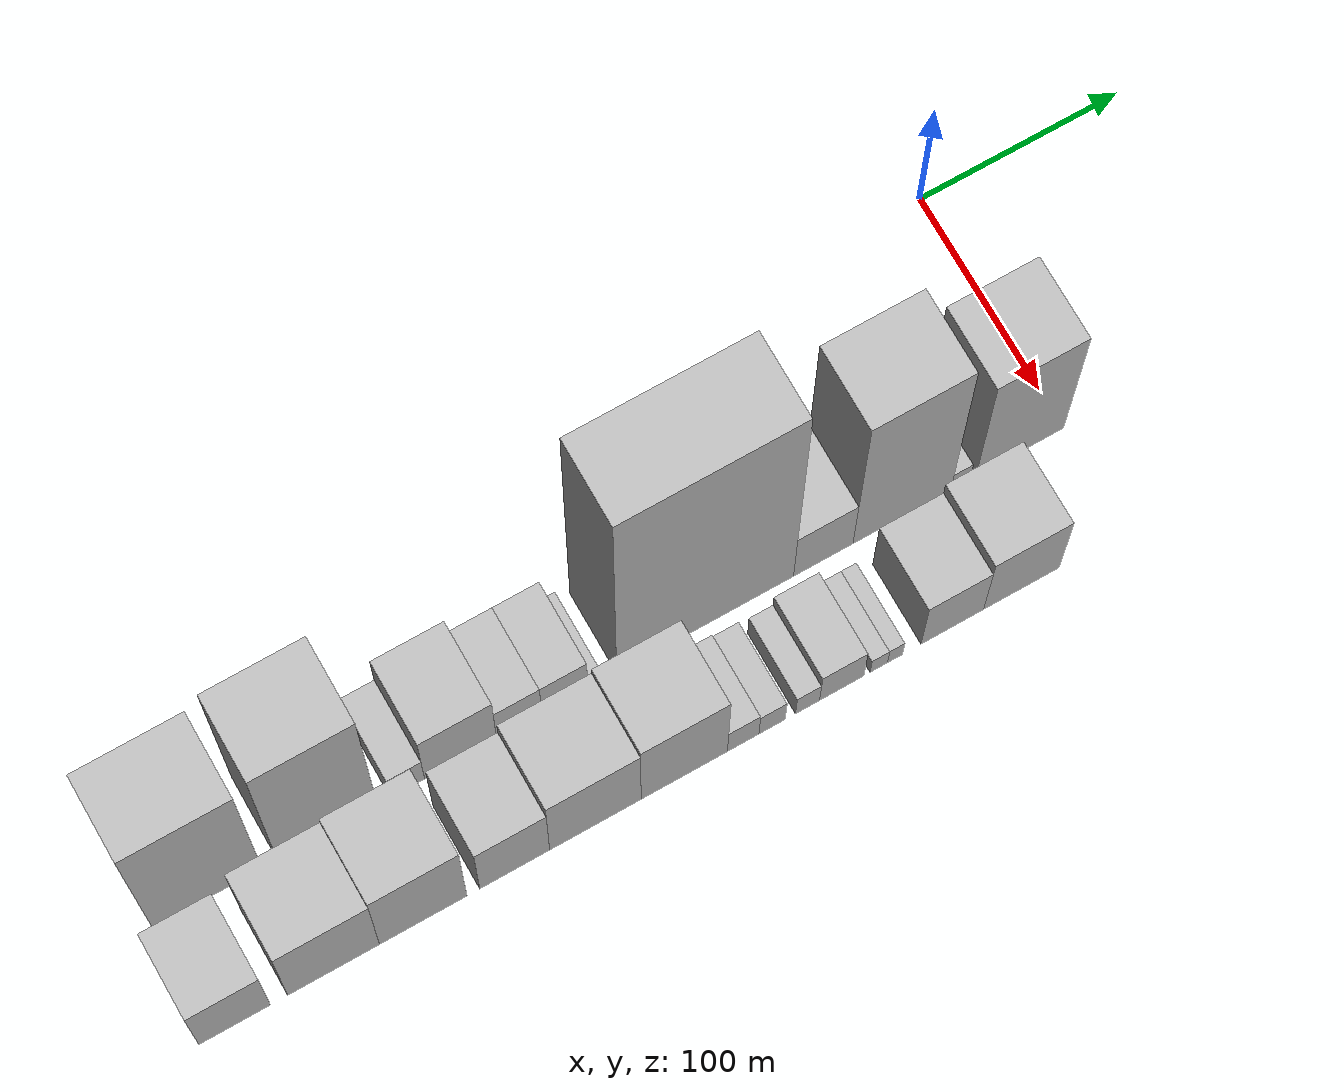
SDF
<sdf version="1.6">
 <world name="default">
  <model name="building_1">
   <static>1</static>
   <pose>100.0000 -412.4454 0 0.000000 0.000000 0.000000</pose>
   <link name="link">
    <pose>0 0 64.50 0 0 0</pose>
    <collision name="collision"><geometry><box><size>40.0000 51.1092 129.0000</size></box></geometry></collision>
    <visual name="visual">
     <cast_shadows>0</cast_shadows>
     <geometry><box><size>40.0000 51.1092 129.0000</size></box></geometry>
     <material>
      <script>
       <uri>model://HANNAS_wall/materials/scripts</uri>
       <uri>model://HANNAS_wall/materials/textures</uri>
       <name>vrc/HANNAS_wall</name>
      </script>
     </material>
    </visual>
   </link>
  </model>
  <model name="building_2">
   <static>1</static>
   <pose>100.0000 -356.2468 0 0.000000 0.000000 0.000000</pose>
   <link name="link">
    <pose>0 0 70.50 0 0 0</pose>
    <collision name="collision"><geometry><box><size>40.0000 47.2879 141.0000</size></box></geometry></collision>
    <visual name="visual">
     <cast_shadows>0</cast_shadows>
     <geometry><box><size>40.0000 47.2879 141.0000</size></box></geometry>
     <material>
      <script>
       <uri>model://HANNAS_wall/materials/scripts</uri>
       <uri>model://HANNAS_wall/materials/textures</uri>
       <name>vrc/HANNAS_wall</name>
      </script>
     </material>
    </visual>
   </link>
  </model>
  <model name="building_3">
   <static>1</static>
   <pose>100.0000 -318.4985 0 0.000000 0.000000 0.000000</pose>
   <link name="link">
    <pose>0 0 15.00 0 0 0</pose>
    <collision name="collision"><geometry><box><size>40.0000 16.2087 30.0000</size></box></geometry></collision>
    <visual name="visual">
     <cast_shadows>0</cast_shadows>
     <geometry><box><size>40.0000 16.2087 30.0000</size></box></geometry>
     <material>
      <script>
       <uri>model://HANNAS_wall/materials/scripts</uri>
       <uri>model://HANNAS_wall/materials/textures</uri>
       <name>vrc/HANNAS_wall</name>
      </script>
     </material>
    </visual>
   </link>
  </model>
  <model name="building_4">
   <static>1</static>
   <pose>100.0000 -293.2531 0 0.000000 0.000000 0.000000</pose>
   <link name="link">
    <pose>0 0 30.00 0 0 0</pose>
    <collision name="collision"><geometry><box><size>40.0000 34.2823 60.0000</size></box></geometry></collision>
    <visual name="visual">
     <cast_shadows>0</cast_shadows>
     <geometry><box><size>40.0000 34.2823 60.0000</size></box></geometry>
     <material>
      <script>
       <uri>model://HANNAS_wall/materials/scripts</uri>
       <uri>model://HANNAS_wall/materials/textures</uri>
       <name>vrc/HANNAS_wall</name>
      </script>
     </material>
    </visual>
   </link>
  </model>
  <model name="building_5">
   <static>1</static>
   <pose>100.0000 -265.3528 0 0.000000 0.000000 0.000000</pose>
   <link name="link">
    <pose>0 0 21.00 0 0 0</pose>
    <collision name="collision"><geometry><box><size>40.0000 21.5183 42.0000</size></box></geometry></collision>
    <visual name="visual">
     <cast_shadows>0</cast_shadows>
     <geometry><box><size>40.0000 21.5183 42.0000</size></box></geometry>
     <material>
      <script>
       <uri>model://HANNAS_wall/materials/scripts</uri>
       <uri>model://HANNAS_wall/materials/textures</uri>
       <name>vrc/HANNAS_wall</name>
      </script>
     </material>
    </visual>
   </link>
  </model>
  <model name="building_6">
   <static>1</static>
   <pose>100.0000 -243.5358 0 0.000000 0.000000 0.000000</pose>
   <link name="link">
    <pose>0 0 21.00 0 0 0</pose>
    <collision name="collision"><geometry><box><size>40.0000 22.1157 42.0000</size></box></geometry></collision>
    <visual name="visual">
     <cast_shadows>0</cast_shadows>
     <geometry><box><size>40.0000 22.1157 42.0000</size></box></geometry>
     <material>
      <script>
       <uri>model://HANNAS_wall/materials/scripts</uri>
       <uri>model://HANNAS_wall/materials/textures</uri>
       <name>vrc/HANNAS_wall</name>
      </script>
     </material>
    </visual>
   </link>
  </model>
  <model name="building_7">
   <static>1</static>
   <pose>100.0000 -229.0889 0 0.000000 0.000000 0.000000</pose>
   <link name="link">
    <pose>0 0 7.50 0 0 0</pose>
    <collision name="collision"><geometry><box><size>40.0000 6.7782 15.0000</size></box></geometry></collision>
    <visual name="visual">
     <cast_shadows>0</cast_shadows>
     <geometry><box><size>40.0000 6.7782 15.0000</size></box></geometry>
     <material>
      <script>
       <uri>model://HANNAS_wall/materials/scripts</uri>
       <uri>model://HANNAS_wall/materials/textures</uri>
       <name>vrc/HANNAS_wall</name>
      </script>
     </material>
    </visual>
   </link>
  </model>
  <model name="building_8">
   <static>1</static>
   <pose>100.0000 -175.8983 0 0.000000 0.000000 0.000000</pose>
   <link name="link">
    <pose>0 0 108.00 0 0 0</pose>
    <collision name="collision"><geometry><box><size>40.0000 85.6029 216.0000</size></box></geometry></collision>
    <visual name="visual">
     <cast_shadows>0</cast_shadows>
     <geometry><box><size>40.0000 85.6029 216.0000</size></box></geometry>
     <material>
      <script>
       <uri>model://HANNAS_wall/materials/scripts</uri>
       <uri>model://HANNAS_wall/materials/textures</uri>
       <name>vrc/HANNAS_wall</name>
      </script>
     </material>
    </visual>
   </link>
  </model>
  <model name="building_9">
   <static>1</static>
   <pose>100.0000 -118.5695 0 0.000000 0.000000 0.000000</pose>
   <link name="link">
    <pose>0 0 27.00 0 0 0</pose>
    <collision name="collision"><geometry><box><size>40.0000 29.0548 54.0000</size></box></geometry></collision>
    <visual name="visual">
     <cast_shadows>0</cast_shadows>
     <geometry><box><size>40.0000 29.0548 54.0000</size></box></geometry>
     <material>
      <script>
       <uri>model://HANNAS_wall/materials/scripts</uri>
       <uri>model://HANNAS_wall/materials/textures</uri>
       <name>vrc/HANNAS_wall</name>
      </script>
     </material>
    </visual>
   </link>
  </model>
  <model name="building_10">
   <static>1</static>
   <pose>100.0000 -80.0002 0 0.000000 0.000000 0.000000</pose>
   <link name="link">
    <pose>0 0 78.00 0 0 0</pose>
    <collision name="collision"><geometry><box><size>40.0000 48.0838 156.0000</size></box></geometry></collision>
    <visual name="visual">
     <cast_shadows>0</cast_shadows>
     <geometry><box><size>40.0000 48.0838 156.0000</size></box></geometry>
     <material>
      <script>
       <uri>model://HANNAS_wall/materials/scripts</uri>
       <uri>model://HANNAS_wall/materials/textures</uri>
       <name>vrc/HANNAS_wall</name>
      </script>
     </material>
    </visual>
   </link>
  </model>
  <model name="building_11">
   <static>1</static>
   <pose>100.0000 -51.2306 0 0.000000 0.000000 0.000000</pose>
   <link name="link">
    <pose>0 0 10.50 0 0 0</pose>
    <collision name="collision"><geometry><box><size>40.0000 9.4553 21.0000</size></box></geometry></collision>
    <visual name="visual">
     <cast_shadows>0</cast_shadows>
     <geometry><box><size>40.0000 9.4553 21.0000</size></box></geometry>
     <material>
      <script>
       <uri>model://HANNAS_wall/materials/scripts</uri>
       <uri>model://HANNAS_wall/materials/textures</uri>
       <name>vrc/HANNAS_wall</name>
      </script>
     </material>
    </visual>
   </link>
  </model>
  <model name="building_12">
   <static>1</static>
   <pose>100.0000 -21.7732 0 0.000000 0.000000 0.000000</pose>
   <link name="link">
    <pose>0 0 58.50 0 0 0</pose>
    <collision name="collision"><geometry><box><size>40.0000 43.4596 117.0000</size></box></geometry></collision>
    <visual name="visual">
     <cast_shadows>0</cast_shadows>
     <geometry><box><size>40.0000 43.4596 117.0000</size></box></geometry>
     <material>
      <script>
       <uri>model://HANNAS_wall/materials/scripts</uri>
       <uri>model://HANNAS_wall/materials/textures</uri>
       <name>vrc/HANNAS_wall</name>
      </script>
     </material>
    </visual>
   </link>
  </model>
  <model name="building_24">
   <static>1</static>
   <pose>152.0000 -427.4469 0 0.000000 0.000000 0.000000</pose>
   <link name="link">
    <pose>0 0 28.50 0 0 0</pose>
    <collision name="collision"><geometry><box><size>40.0000 33.1061 57.0000</size></box></geometry></collision>
    <visual name="visual">
     <cast_shadows>0</cast_shadows>
     <geometry><box><size>40.0000 33.1061 57.0000</size></box></geometry>
     <material>
      <script>
       <uri>model://HANNAS_wall/materials/scripts</uri>
       <uri>model://HANNAS_wall/materials/textures</uri>
       <name>vrc/HANNAS_wall</name>
      </script>
     </material>
    </visual>
   </link>
  </model>
  <model name="building_25">
   <static>1</static>
   <pose>152.0000 -381.4423 0 0.000000 0.000000 0.000000</pose>
   <link name="link">
    <pose>0 0 37.50 0 0 0</pose>
    <collision name="collision"><geometry><box><size>40.0000 42.9032 75.0000</size></box></geometry></collision>
    <visual name="visual">
     <cast_shadows>0</cast_shadows>
     <geometry><box><size>40.0000 42.9032 75.0000</size></box></geometry>
     <material>
      <script>
       <uri>model://HANNAS_wall/materials/scripts</uri>
       <uri>model://HANNAS_wall/materials/textures</uri>
       <name>vrc/HANNAS_wall</name>
      </script>
     </material>
    </visual>
   </link>
  </model>
  <model name="building_26">
   <static>1</static>
   <pose>152.0000 -339.4748 0 0.000000 0.000000 0.000000</pose>
   <link name="link">
    <pose>0 0 40.50 0 0 0</pose>
    <collision name="collision"><geometry><box><size>40.0000 41.0317 81.0000</size></box></geometry></collision>
    <visual name="visual">
     <cast_shadows>0</cast_shadows>
     <geometry><box><size>40.0000 41.0317 81.0000</size></box></geometry>
     <material>
      <script>
       <uri>model://HANNAS_wall/materials/scripts</uri>
       <uri>model://HANNAS_wall/materials/textures</uri>
       <name>vrc/HANNAS_wall</name>
      </script>
     </material>
    </visual>
   </link>
  </model>
  <model name="building_27">
   <static>1</static>
   <pose>152.0000 -296.4345 0 0.000000 0.000000 0.000000</pose>
   <link name="link">
    <pose>0 0 31.50 0 0 0</pose>
    <collision name="collision"><geometry><box><size>40.0000 33.0490 63.0000</size></box></geometry></collision>
    <visual name="visual">
     <cast_shadows>0</cast_shadows>
     <geometry><box><size>40.0000 33.0490 63.0000</size></box></geometry>
     <material>
      <script>
       <uri>model://HANNAS_wall/materials/scripts</uri>
       <uri>model://HANNAS_wall/materials/textures</uri>
       <name>vrc/HANNAS_wall</name>
      </script>
     </material>
    </visual>
   </link>
  </model>
  <model name="building_28">
   <static>1</static>
   <pose>152.0000 -258.1805 0 0.000000 0.000000 0.000000</pose>
   <link name="link">
    <pose>0 0 37.50 0 0 0</pose>
    <collision name="collision"><geometry><box><size>40.0000 43.4590 75.0000</size></box></geometry></collision>
    <visual name="visual">
     <cast_shadows>0</cast_shadows>
     <geometry><box><size>40.0000 43.4590 75.0000</size></box></geometry>
     <material>
      <script>
       <uri>model://HANNAS_wall/materials/scripts</uri>
       <uri>model://HANNAS_wall/materials/textures</uri>
       <name>vrc/HANNAS_wall</name>
      </script>
     </material>
    </visual>
   </link>
  </model>
  <model name="building_29">
   <static>1</static>
   <pose>152.0000 -215.7750 0 0.000000 0.000000 0.000000</pose>
   <link name="link">
    <pose>0 0 40.50 0 0 0</pose>
    <collision name="collision"><geometry><box><size>40.0000 41.3522 81.0000</size></box></geometry></collision>
    <visual name="visual">
     <cast_shadows>0</cast_shadows>
     <geometry><box><size>40.0000 41.3522 81.0000</size></box></geometry>
     <material>
      <script>
       <uri>model://HANNAS_wall/materials/scripts</uri>
       <uri>model://HANNAS_wall/materials/textures</uri>
       <name>vrc/HANNAS_wall</name>
      </script>
     </material>
    </visual>
   </link>
  </model>
  <model name="building_30">
   <static>1</static>
   <pose>152.0000 -187.5196 0 0.000000 0.000000 0.000000</pose>
   <link name="link">
    <pose>0 0 15.00 0 0 0</pose>
    <collision name="collision"><geometry><box><size>40.0000 15.1585 30.0000</size></box></geometry></collision>
    <visual name="visual">
     <cast_shadows>0</cast_shadows>
     <geometry><box><size>40.0000 15.1585 30.0000</size></box></geometry>
     <material>
      <script>
       <uri>model://HANNAS_wall/materials/scripts</uri>
       <uri>model://HANNAS_wall/materials/textures</uri>
       <name>vrc/HANNAS_wall</name>
      </script>
     </material>
    </visual>
   </link>
  </model>
  <model name="building_31">
   <static>1</static>
   <pose>152.0000 -173.6112 0 0.000000 0.000000 0.000000</pose>
   <link name="link">
    <pose>0 0 13.50 0 0 0</pose>
    <collision name="collision"><geometry><box><size>40.0000 12.6585 27.0000</size></box></geometry></collision>
    <visual name="visual">
     <cast_shadows>0</cast_shadows>
     <geometry><box><size>40.0000 12.6585 27.0000</size></box></geometry>
     <material>
      <script>
       <uri>model://HANNAS_wall/materials/scripts</uri>
       <uri>model://HANNAS_wall/materials/textures</uri>
       <name>vrc/HANNAS_wall</name>
      </script>
     </material>
    </visual>
   </link>
  </model>
  <model name="building_32">
   <static>1</static>
   <pose>152.0000 -156.4953 0 0.000000 0.000000 0.000000</pose>
   <link name="link">
    <pose>0 0 12.00 0 0 0</pose>
    <collision name="collision"><geometry><box><size>40.0000 11.5733 24.0000</size></box></geometry></collision>
    <visual name="visual">
     <cast_shadows>0</cast_shadows>
     <geometry><box><size>40.0000 11.5733 24.0000</size></box></geometry>
     <material>
      <script>
       <uri>model://HANNAS_wall/materials/scripts</uri>
       <uri>model://HANNAS_wall/materials/textures</uri>
       <name>vrc/HANNAS_wall</name>
      </script>
     </material>
    </visual>
   </link>
  </model>
  <model name="building_33">
   <static>1</static>
   <pose>152.0000 -139.9352 0 0.000000 0.000000 0.000000</pose>
   <link name="link">
    <pose>0 0 18.00 0 0 0</pose>
    <collision name="collision"><geometry><box><size>40.0000 21.5468 36.0000</size></box></geometry></collision>
    <visual name="visual">
     <cast_shadows>0</cast_shadows>
     <geometry><box><size>40.0000 21.5468 36.0000</size></box></geometry>
     <material>
      <script>
       <uri>model://HANNAS_wall/materials/scripts</uri>
       <uri>model://HANNAS_wall/materials/textures</uri>
       <name>vrc/HANNAS_wall</name>
      </script>
     </material>
    </visual>
   </link>
  </model>
  <model name="building_34">
   <static>1</static>
   <pose>152.0000 -121.9269 0 0.000000 0.000000 0.000000</pose>
   <link name="link">
    <pose>0 0 9.00 0 0 0</pose>
    <collision name="collision"><geometry><box><size>40.0000 8.4697 18.0000</size></box></geometry></collision>
    <visual name="visual">
     <cast_shadows>0</cast_shadows>
     <geometry><box><size>40.0000 8.4697 18.0000</size></box></geometry>
     <material>
      <script>
       <uri>model://HANNAS_wall/materials/scripts</uri>
       <uri>model://HANNAS_wall/materials/textures</uri>
       <name>vrc/HANNAS_wall</name>
      </script>
     </material>
    </visual>
   </link>
  </model>
  <model name="building_35">
   <static>1</static>
   <pose>152.0000 -114.0219 0 0.000000 0.000000 0.000000</pose>
   <link name="link">
    <pose>0 0 9.00 0 0 0</pose>
    <collision name="collision"><geometry><box><size>40.0000 7.3404 18.0000</size></box></geometry></collision>
    <visual name="visual">
     <cast_shadows>0</cast_shadows>
     <geometry><box><size>40.0000 7.3404 18.0000</size></box></geometry>
     <material>
      <script>
       <uri>model://HANNAS_wall/materials/scripts</uri>
       <uri>model://HANNAS_wall/materials/textures</uri>
       <name>vrc/HANNAS_wall</name>
      </script>
     </material>
    </visual>
   </link>
  </model>
  <model name="building_36">
   <static>1</static>
   <pose>152.0000 -86.0869 0 0.000000 0.000000 0.000000</pose>
   <link name="link">
    <pose>0 0 27.00 0 0 0</pose>
    <collision name="collision"><geometry><box><size>40.0000 30.5296 54.0000</size></box></geometry></collision>
    <visual name="visual">
     <cast_shadows>0</cast_shadows>
     <geometry><box><size>40.0000 30.5296 54.0000</size></box></geometry>
     <material>
      <script>
       <uri>model://HANNAS_wall/materials/scripts</uri>
       <uri>model://HANNAS_wall/materials/textures</uri>
       <name>vrc/HANNAS_wall</name>
      </script>
     </material>
    </visual>
   </link>
  </model>
  <model name="building_37">
   <static>1</static>
   <pose>152.0000 -52.2406 0 0.000000 0.000000 0.000000</pose>
   <link name="link">
    <pose>0 0 33.00 0 0 0</pose>
    <collision name="collision"><geometry><box><size>40.0000 37.1631 66.0000</size></box></geometry></collision>
    <visual name="visual">
     <cast_shadows>0</cast_shadows>
     <geometry><box><size>40.0000 37.1631 66.0000</size></box></geometry>
     <material>
      <script>
       <uri>model://HANNAS_wall/materials/scripts</uri>
       <uri>model://HANNAS_wall/materials/textures</uri>
       <name>vrc/HANNAS_wall</name>
      </script>
     </material>
    </visual>
   </link>
  </model>
 </world>
</sdf>
